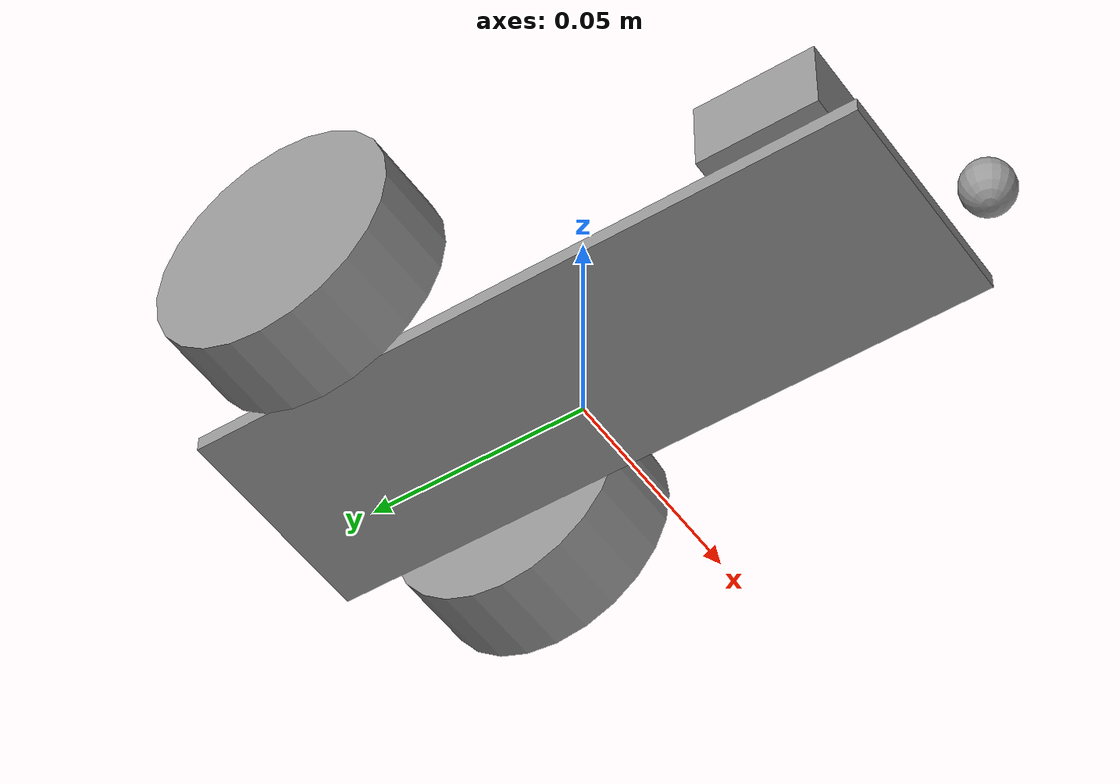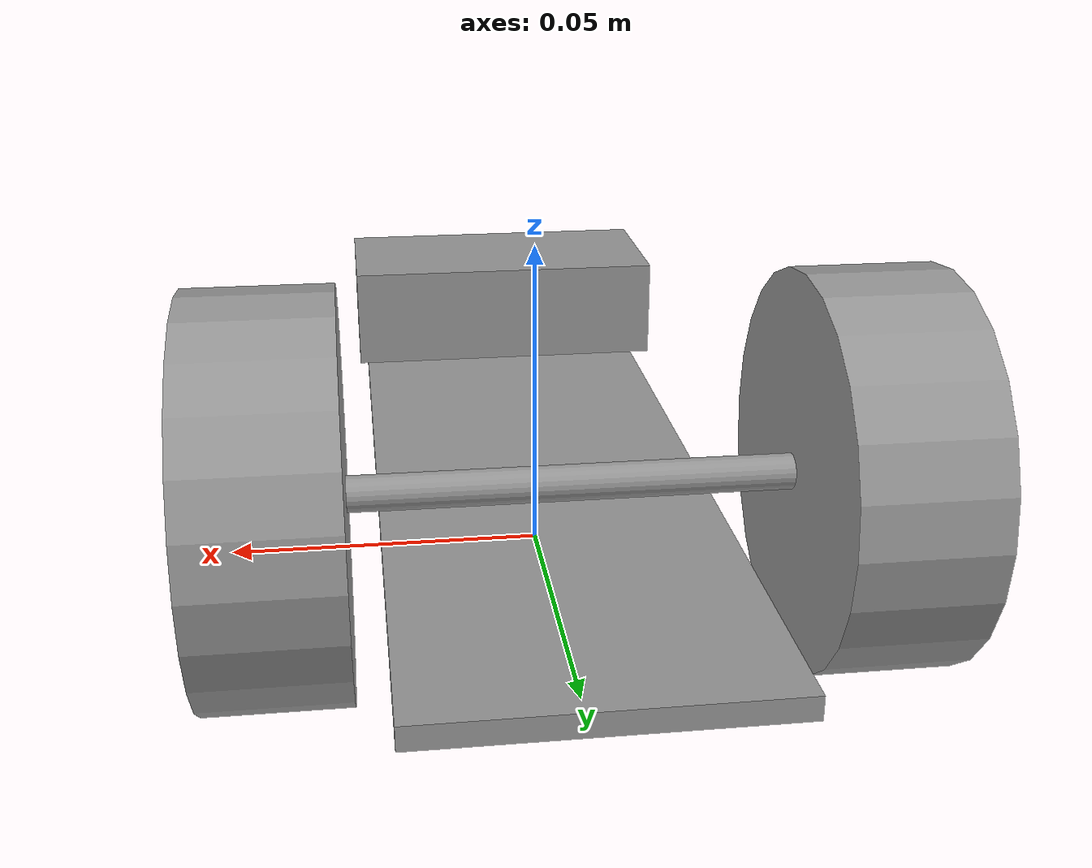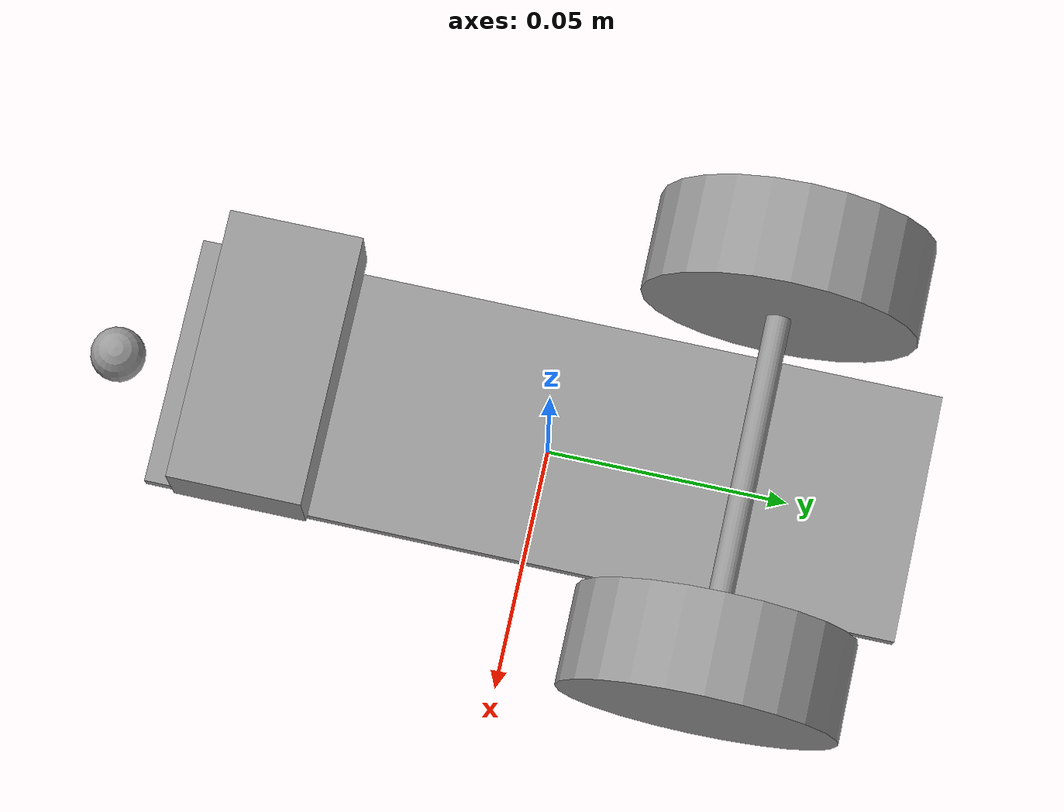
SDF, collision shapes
<?xml version="1.0" ?>
<sdf version="1.5">

    <model name="vehicle_no_motor">
      <model name="chassis_v2">
        <pose>0 0 0.0132 0 0 0</pose>
        <link name="link">
          <inertial>
            <mass>0.1</mass>
            <inertia>
              <ixx>0.0001</ixx>
              <ixy>0</ixy>
              <ixz>0</ixz>
              <iyy>0.0001</iyy>
              <iyz>0</iyz>
              <izz>0.0001</izz>
            </inertia>
          </inertial>
          <collision name="collision">
            <pose>0.0005 -0.00065 0 1.57079632679 0 0</pose>
            <geometry>
              <box>
                <size>0.051 0.0035 0.153</size>
              </box>
            </geometry>
          </collision>
          <visual name="visual">
            <pose>0 0 0.0 1.57079632679 0 0</pose>
            <geometry>
              <mesh>
                <uri>model://chassis_v2/meshes/chassis_v2.dae</uri>
                <scale>0.001 0.001 0.001</scale>
              </mesh>
            </geometry>
            <material>
              <script>
                <uri>file://media/materials/scripts/gazebo.material</uri>
                <name>Gazebo/Grey</name>
              </script>
            </material>
          </visual>
        </link>
      </model>

      <model name="axle_wheels">
        <pose>0 0.040 0.028 0 0 0</pose>
        <link name="link">
          <inertial>
            <mass>0.1</mass>
            <inertia>
              <ixx>0.0001</ixx>
              <ixy>0</ixy>
              <ixz>0</ixz>
              <iyy>0.0001</iyy>
              <iyz>0</iyz>
              <izz>0.0001</izz>
            </inertia>
          </inertial>
          <collision name="axle_collision">
            <pose>0 0 0.0 0 1.57079632679 0</pose>
            <geometry>
              <cylinder>
                <radius>0.0025</radius>
                <length>0.08</length>
              </cylinder>
            </geometry>
          </collision>
          <collision name="wheel_0_collision">
            <pose>-0.0405 0 0.0 0 1.57079632679 0</pose>
            <geometry>
              <cylinder>
                <radius>0.028</radius>
                <length>0.02</length>
              </cylinder>
            </geometry>
          </collision>
          <collision name="wheel_1_collision">
            <pose>0.0405 0 0.0 0 1.57079632679 0</pose>
            <geometry>
              <cylinder>
                <radius>0.028</radius>
                <length>0.02</length>
              </cylinder>
            </geometry>
          </collision>
          <visual name="visual">
            <pose>0 0 0.0 0 0 0</pose>
            <geometry>
              <mesh>
                <uri>model://axle_wheels/meshes/axle_wheels.dae</uri>
                <scale>0.001 0.001 0.001</scale>
              </mesh>
            </geometry>
            <material>
              <script>
                <uri>file://media/materials/scripts/gazebo.material</uri>
                <name>Gazebo/Grey</name>
              </script>
            </material>
          </visual>
        </link>
      </model>

      <model name="caster_wheel">
        <pose>0 -0.09 0.0058 0 0 0</pose>
        <link name="link">
          <!-- Physics -->
          <collision name="collision">
            <pose>0 0 0.0 0 0 0</pose>
            <geometry>
              <sphere>
                <radius>0.0057</radius>
              </sphere>
            </geometry>
          </collision>
          <inertial>
            <mass>0.1</mass>
            <pose>0 0 0 0 0 0</pose>
            <inertia>
              <ixx>0.0001</ixx>
              <ixy>0</ixy>
              <ixz>0</ixz>
              <iyy>0.0001</iyy>
              <iyz>0</iyz>
              <izz>0.0001</izz>
            </inertia>
          </inertial>
          <visual name="visual">
            <geometry>
              <sphere>
                <radius>0.0057</radius>
              </sphere>
            </geometry>
            <material>
              <script>
                <name>Gazebo/Grey</name>
              </script>
            </material>
          </visual>
        </link>
      </model>

      <model name="battery_9v">
        <pose>0 -0.057 0.025 0 0 -1.57</pose>
          <link name="link">
            <inertial>
              <mass>0.1</mass>
              <inertia>
                <ixx>0.0001</ixx>
                <ixy>0</ixy>
                <ixz>0</ixz>
                <iyy>0.0001</iyy>
                <iyz>0</iyz>
                <izz>0.0001</izz>
              </inertia>
            </inertial>
            <collision name="collision">
              <pose>0 0 0.0 0 0 0</pose>
              <geometry>
                <box>
                  <size>0.027 0.055 0.017</size>
                </box>
              </geometry>
            </collision>
            <visual name="visual">
              <pose>0 0 0.0 0 0 0</pose>
              <geometry>
                <mesh>
                  <uri>model://battery_9v/meshes/battery_9v.dae</uri>
                  <scale>0.001 0.001 0.001</scale>
                </mesh>
              </geometry>
              <material>
                <script>
                  <uri>file://media/materials/scripts/gazebo.material</uri>
                  <name>Gazebo/Grey</name>
                </script>
              </material>
            </visual>
          </link>
      </model>

      <joint name="chassis_v2_battery_9v_joint" type="fixed">
        <parent>chassis_v2::link</parent>
        <child>battery_9v::link</child>
      </joint>

      <joint name="chassis_v2_axle_joint" type="revolute">
        <parent>chassis_v2::link</parent>
        <child>axle_wheels::link</child>
        <axis>
          <xyz>1 0 0</xyz>
          <limit>
            <lower>-1000000000000000</lower>
            <upper>1000000000000000</upper>
          </limit>
        </axis>
      </joint>
      <joint name="chassis_v2_caster_joint" type="ball">
        <parent>chassis_v2::link</parent>
        <child>caster_wheel::link</child>
      </joint>

    </model>

</sdf>
